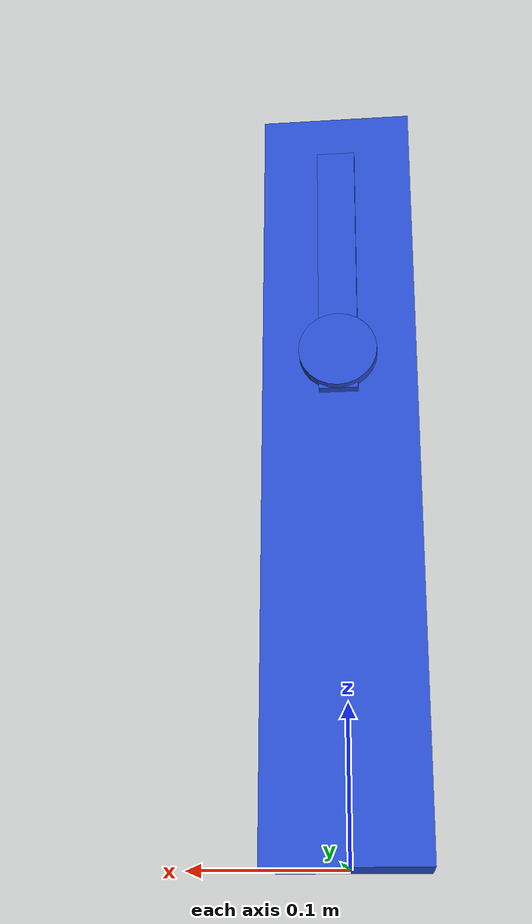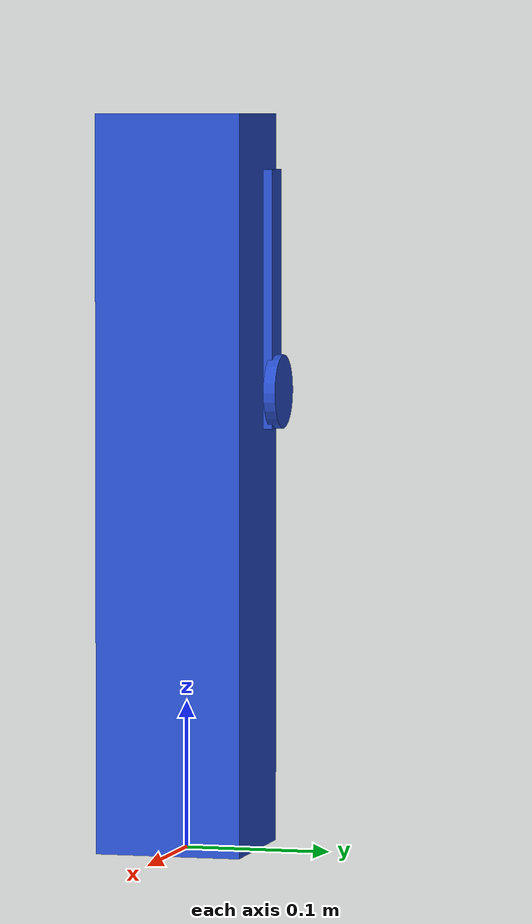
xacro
<?xml version='1.0'?>
<robot name="quadrus" xmlns:xacro="http://www.ros.org/wiki/xacro">

	<!-- Import Rviz colors -->
	<xacro:include filename="$(find qd_simulation)/robot_description/materials.xacro" />

    <!-- Import all Gazebo-customization elements, including Gazebo colors -->
	<xacro:include filename="$(find qd_simulation)/robot_description/quadrus.gazebo" />

	<!-- Used for fixing robot to Gazebo 'base_link' -->
	<link name="world"/>

	<link name="base_link">
		<visual>
			<origin xyz="0 0 0.25" rpy="0 0 0" />
			<geometry>
				<box size="0.1 0.1 0.5"/>
			</geometry>
			<material name="blue" />
		</visual>

        <inertial>
            <origin xyz="0 0 0"/>
            <mass value="0.15"/>
            <inertia ixx="0.0" ixy="0.0" ixz="0.0" iyy="0.0" iyz="0.0" izz="0.0"/>
        </inertial>

	</link>

    <link name="baton">
        <visual>
            <origin xyz="0.075 0 0" rpy="0 0 0" />
            <geometry>
                <box size="0.175 0.025 0.00635"/>
            </geometry>
            <material name="blue"/>
        </visual>

        <inertial>
            <origin xyz="0.0875 0 0"/>
            <mass value="0.015"/>
            <inertia ixx="0.0" ixy="0.0" ixz="0.0" iyy="0.0" iyz="0.0" izz="0.000039062"/>
        </inertial>

    </link>

    <link name="masse">
       <visual>
            <origin xyz="0 0 0.004175" rpy="0 0 0" />
            <geometry>
                <cylinder radius="0.025" length="0.008"/>
            </geometry>
            <material name="blue"/>
        </visual>

        <inertial>
            <origin xyz="0 0 0"/>
            <mass value="0.163"/>
            <inertia ixx="0.0" ixy="0.0" ixz="0.0" iyy="0.0" iyz="0.0" izz="0.000050625"/>
        </inertial>

    </link>

	<joint name="fixed" type="fixed">
		<parent link="world"/>
		<child link="base_link"/>
		<origin xyz="0 0 0"/>
	</joint>

    <joint name="J1" type="continuous">
        <parent link="base_link"/>
        <child link="baton"/>
        <origin xyz="0 0.06 0.45" rpy="-1.570 1.57 0" />
        <axis xyz="0 0 1" />
    </joint>

    <joint name="fixed2" type="fixed">
        <parent link="baton"/>
        <child link="masse"/>
        <origin xyz="0.1375 0 0" rpy="0 0 0" />
        <axis xyz="0 0 0" />
    </joint>

    <transmission name="transmission_J1">
        <type>transmission_interface/SimpleTransmission</type>

        <joint name="J1">
            <hardwareInterface>hardware_interface/EffortJointInterface</hardwareInterface>
        </joint>

        <actuator name="motor_J1">
            <mechanicalReduction>1</mechanicalReduction>
            <hardwareInterface>hardware_interface/EffortJointInterface</hardwareInterface>
        </actuator>

    </transmission>

</robot>
